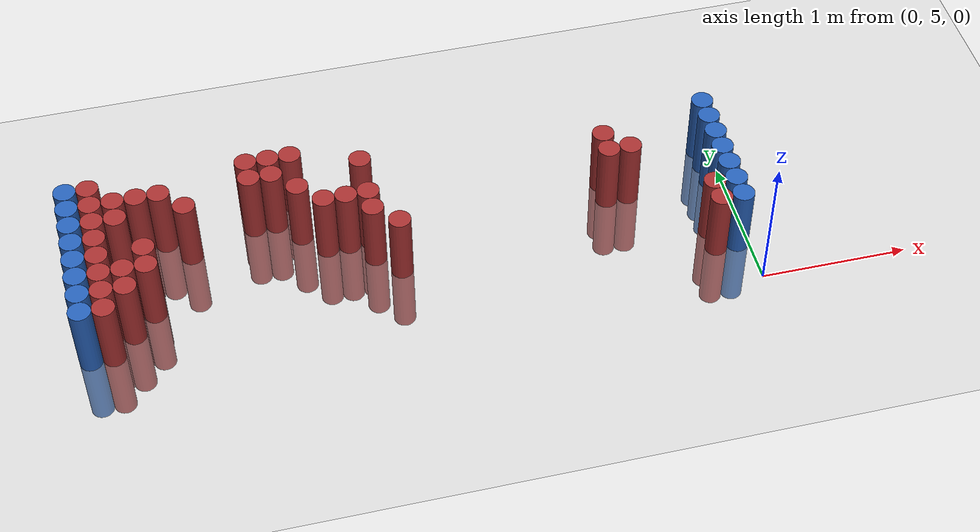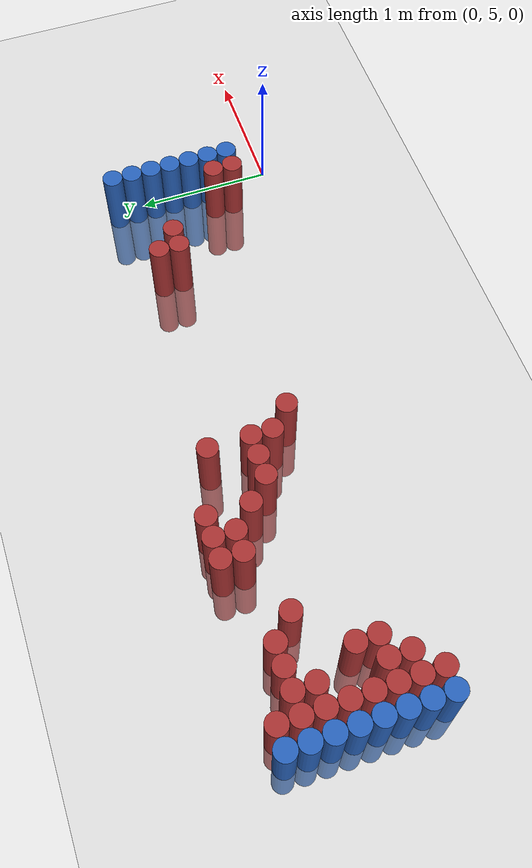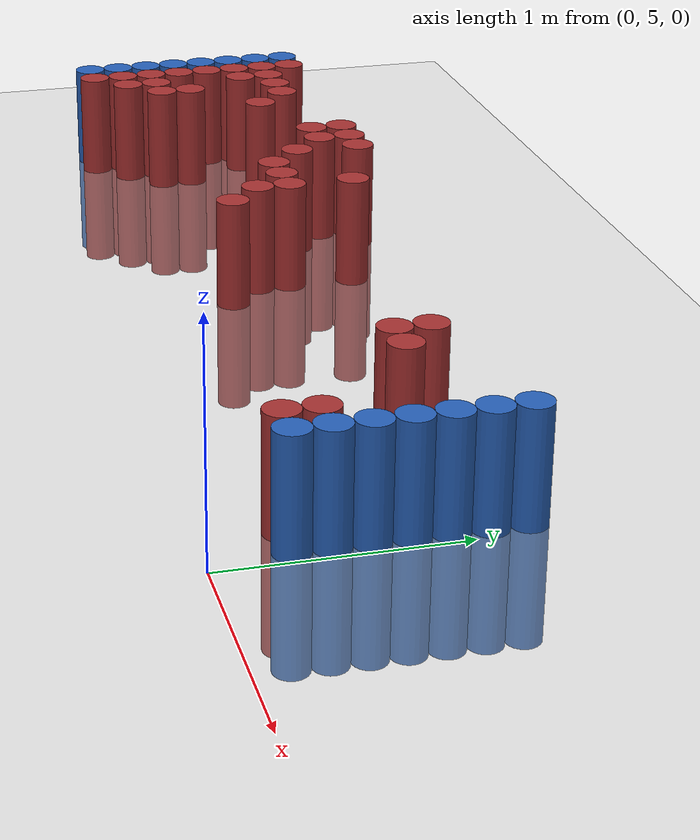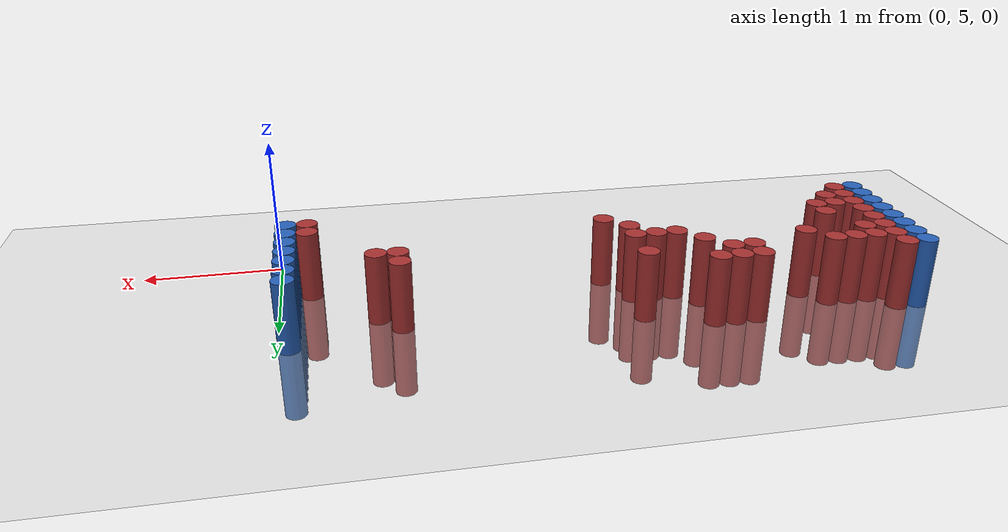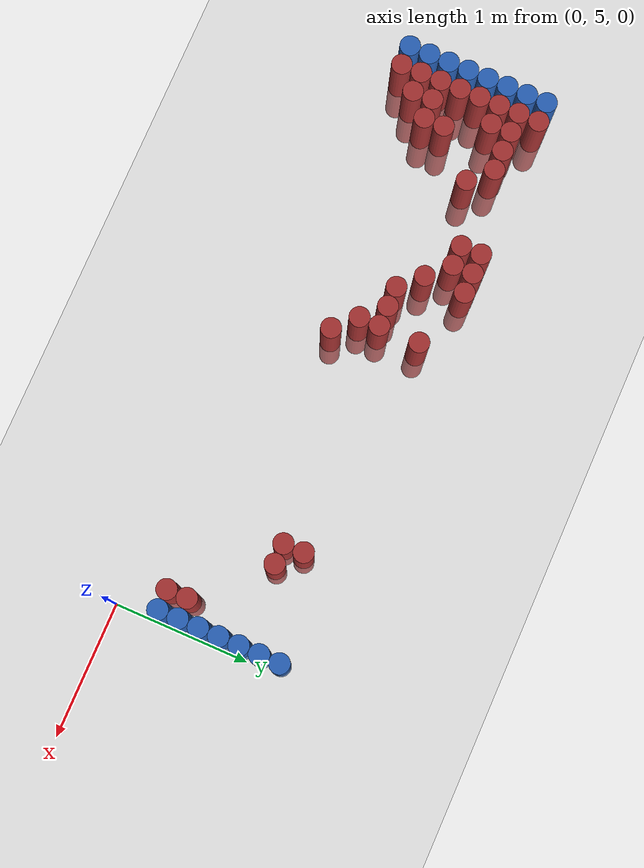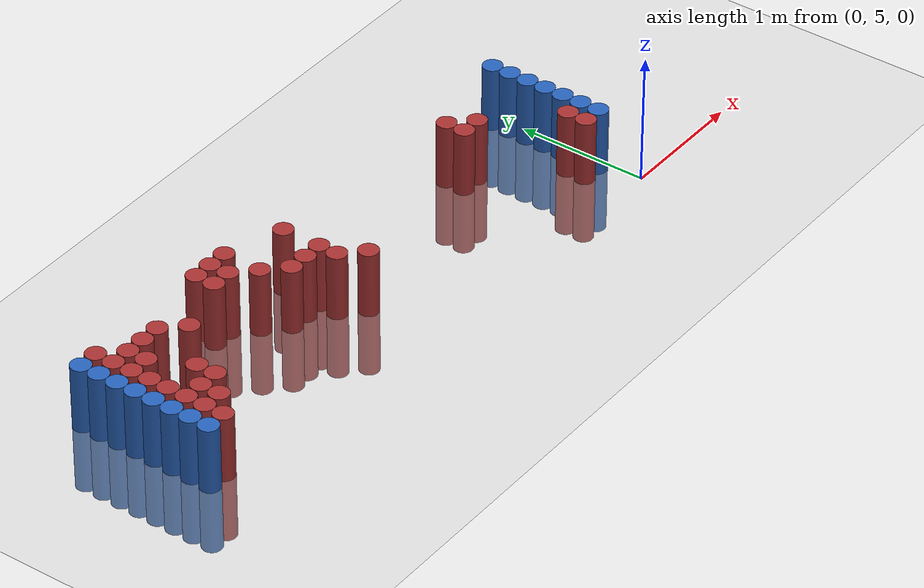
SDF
<sdf version="1.6">
 <world name="default">
  <model name="ground_plane">
   <static>1</static>
   <link name="link">
    <collision name="collision">
     <geometry><plane><normal>0 0 1</normal><size>100 100</size></plane></geometry>
     <surface><friction><ode><mu>100</mu><mu2>50</mu2></ode></friction></surface>
    </collision>
    <visual name="visual">
     <cast_shadows>0</cast_shadows>
     <geometry><plane><normal>0 0 1</normal><size>100 100</size></plane></geometry>
     <material>
      <script><uri>file://media/materials/scripts/gazebo.material</uri><name>Gazebo/Grey</name></script>
     </material>
    </visual>
   </link>
  </model>
  <model name="unit_cylinder_97">
   <static>1</static>
   <pose>-4.425000 5.325000 0.000000 0.000000 0.000000 0.000000</pose>
   <link name="link">
    <inertial>
     <mass>1</mass>
     <inertia><ixx>0.145833</ixx><ixy>0</ixy><ixz>0</ixz><iyy>0.145833</iyy><iyz>0</iyz><izz>0.125</izz></inertia>
    </inertial>
    <collision name="collision">
     <geometry><cylinder><radius>0.075000</radius><length>1</length></cylinder></geometry>
    </collision>
    <visual name="visual">
     <geometry><cylinder><radius>0.075000</radius><length>1</length></cylinder></geometry>
     <material>
      <ambient>0.152000 0.379000 0.720000 1</ambient>
      <diffuse>0.152000 0.379000 0.720000 1</diffuse>
     </material>
     <material>
      <script><name>Gazebo/Grey</name><uri>file://media/materials/scripts/gazebo.material</uri></script>
     </material>
    </visual>
   </link>
  </model>
  <model name="unit_cylinder_98">
   <static>1</static>
   <pose>-4.425000 5.475000 0.000000 0.000000 0.000000 0.000000</pose>
   <link name="link">
    <inertial>
     <mass>1</mass>
     <inertia><ixx>0.145833</ixx><ixy>0</ixy><ixz>0</ixz><iyy>0.145833</iyy><iyz>0</iyz><izz>0.125</izz></inertia>
    </inertial>
    <collision name="collision">
     <geometry><cylinder><radius>0.075000</radius><length>1</length></cylinder></geometry>
    </collision>
    <visual name="visual">
     <geometry><cylinder><radius>0.075000</radius><length>1</length></cylinder></geometry>
     <material>
      <ambient>0.152000 0.379000 0.720000 1</ambient>
      <diffuse>0.152000 0.379000 0.720000 1</diffuse>
     </material>
     <material>
      <script><name>Gazebo/Grey</name><uri>file://media/materials/scripts/gazebo.material</uri></script>
     </material>
    </visual>
   </link>
  </model>
  <model name="unit_cylinder_99">
   <static>1</static>
   <pose>-4.425000 5.625000 0.000000 0.000000 0.000000 0.000000</pose>
   <link name="link">
    <inertial>
     <mass>1</mass>
     <inertia><ixx>0.145833</ixx><ixy>0</ixy><ixz>0</ixz><iyy>0.145833</iyy><iyz>0</iyz><izz>0.125</izz></inertia>
    </inertial>
    <collision name="collision">
     <geometry><cylinder><radius>0.075000</radius><length>1</length></cylinder></geometry>
    </collision>
    <visual name="visual">
     <geometry><cylinder><radius>0.075000</radius><length>1</length></cylinder></geometry>
     <material>
      <ambient>0.152000 0.379000 0.720000 1</ambient>
      <diffuse>0.152000 0.379000 0.720000 1</diffuse>
     </material>
     <material>
      <script><name>Gazebo/Grey</name><uri>file://media/materials/scripts/gazebo.material</uri></script>
     </material>
    </visual>
   </link>
  </model>
  <model name="unit_cylinder_100">
   <static>1</static>
   <pose>-4.425000 5.775000 0.000000 0.000000 0.000000 0.000000</pose>
   <link name="link">
    <inertial>
     <mass>1</mass>
     <inertia><ixx>0.145833</ixx><ixy>0</ixy><ixz>0</ixz><iyy>0.145833</iyy><iyz>0</iyz><izz>0.125</izz></inertia>
    </inertial>
    <collision name="collision">
     <geometry><cylinder><radius>0.075000</radius><length>1</length></cylinder></geometry>
    </collision>
    <visual name="visual">
     <geometry><cylinder><radius>0.075000</radius><length>1</length></cylinder></geometry>
     <material>
      <ambient>0.152000 0.379000 0.720000 1</ambient>
      <diffuse>0.152000 0.379000 0.720000 1</diffuse>
     </material>
     <material>
      <script><name>Gazebo/Grey</name><uri>file://media/materials/scripts/gazebo.material</uri></script>
     </material>
    </visual>
   </link>
  </model>
  <model name="unit_cylinder_101">
   <static>1</static>
   <pose>-4.425000 5.925000 0.000000 0.000000 0.000000 0.000000</pose>
   <link name="link">
    <inertial>
     <mass>1</mass>
     <inertia><ixx>0.145833</ixx><ixy>0</ixy><ixz>0</ixz><iyy>0.145833</iyy><iyz>0</iyz><izz>0.125</izz></inertia>
    </inertial>
    <collision name="collision">
     <geometry><cylinder><radius>0.075000</radius><length>1</length></cylinder></geometry>
    </collision>
    <visual name="visual">
     <geometry><cylinder><radius>0.075000</radius><length>1</length></cylinder></geometry>
     <material>
      <ambient>0.152000 0.379000 0.720000 1</ambient>
      <diffuse>0.152000 0.379000 0.720000 1</diffuse>
     </material>
     <material>
      <script><name>Gazebo/Grey</name><uri>file://media/materials/scripts/gazebo.material</uri></script>
     </material>
    </visual>
   </link>
  </model>
  <model name="unit_cylinder_102">
   <static>1</static>
   <pose>-4.425000 6.075000 0.000000 0.000000 0.000000 0.000000</pose>
   <link name="link">
    <inertial>
     <mass>1</mass>
     <inertia><ixx>0.145833</ixx><ixy>0</ixy><ixz>0</ixz><iyy>0.145833</iyy><iyz>0</iyz><izz>0.125</izz></inertia>
    </inertial>
    <collision name="collision">
     <geometry><cylinder><radius>0.075000</radius><length>1</length></cylinder></geometry>
    </collision>
    <visual name="visual">
     <geometry><cylinder><radius>0.075000</radius><length>1</length></cylinder></geometry>
     <material>
      <ambient>0.152000 0.379000 0.720000 1</ambient>
      <diffuse>0.152000 0.379000 0.720000 1</diffuse>
     </material>
     <material>
      <script><name>Gazebo/Grey</name><uri>file://media/materials/scripts/gazebo.material</uri></script>
     </material>
    </visual>
   </link>
  </model>
  <model name="unit_cylinder_103">
   <static>1</static>
   <pose>-4.425000 6.225000 0.000000 0.000000 0.000000 0.000000</pose>
   <link name="link">
    <inertial>
     <mass>1</mass>
     <inertia><ixx>0.145833</ixx><ixy>0</ixy><ixz>0</ixz><iyy>0.145833</iyy><iyz>0</iyz><izz>0.125</izz></inertia>
    </inertial>
    <collision name="collision">
     <geometry><cylinder><radius>0.075000</radius><length>1</length></cylinder></geometry>
    </collision>
    <visual name="visual">
     <geometry><cylinder><radius>0.075000</radius><length>1</length></cylinder></geometry>
     <material>
      <ambient>0.152000 0.379000 0.720000 1</ambient>
      <diffuse>0.152000 0.379000 0.720000 1</diffuse>
     </material>
     <material>
      <script><name>Gazebo/Grey</name><uri>file://media/materials/scripts/gazebo.material</uri></script>
     </material>
    </visual>
   </link>
  </model>
  <model name="unit_cylinder_104">
   <static>1</static>
   <pose>-4.425000 6.375000 0.000000 0.000000 0.000000 0.000000</pose>
   <link name="link">
    <inertial>
     <mass>1</mass>
     <inertia><ixx>0.145833</ixx><ixy>0</ixy><ixz>0</ixz><iyy>0.145833</iyy><iyz>0</iyz><izz>0.125</izz></inertia>
    </inertial>
    <collision name="collision">
     <geometry><cylinder><radius>0.075000</radius><length>1</length></cylinder></geometry>
    </collision>
    <visual name="visual">
     <geometry><cylinder><radius>0.075000</radius><length>1</length></cylinder></geometry>
     <material>
      <ambient>0.152000 0.379000 0.720000 1</ambient>
      <diffuse>0.152000 0.379000 0.720000 1</diffuse>
     </material>
     <material>
      <script><name>Gazebo/Grey</name><uri>file://media/materials/scripts/gazebo.material</uri></script>
     </material>
    </visual>
   </link>
  </model>
  <model name="unit_cylinder_126">
   <static>1</static>
   <pose>-4.275000 5.325000 0.000000 0.000000 0.000000 0.000000</pose>
   <link name="link">
    <inertial>
     <mass>1</mass>
     <inertia><ixx>0.145833</ixx><ixy>0</ixy><ixz>0</ixz><iyy>0.145833</iyy><iyz>0</iyz><izz>0.125</izz></inertia>
    </inertial>
    <collision name="collision">
     <geometry><cylinder><radius>0.075000</radius><length>1</length></cylinder></geometry>
    </collision>
    <visual name="visual">
     <geometry><cylinder><radius>0.075000</radius><length>1</length></cylinder></geometry>
     <material>
      <ambient>0.648000 0.192000 0.192000 1</ambient>
      <diffuse>0.648000 0.192000 0.192000 1</diffuse>
     </material>
     <material>
      <script><name>Gazebo/Grey</name><uri>file://media/materials/scripts/gazebo.material</uri></script>
     </material>
    </visual>
   </link>
  </model>
  <model name="unit_cylinder_127">
   <static>1</static>
   <pose>-4.275000 5.475000 0.000000 0.000000 0.000000 0.000000</pose>
   <link name="link">
    <inertial>
     <mass>1</mass>
     <inertia><ixx>0.145833</ixx><ixy>0</ixy><ixz>0</ixz><iyy>0.145833</iyy><iyz>0</iyz><izz>0.125</izz></inertia>
    </inertial>
    <collision name="collision">
     <geometry><cylinder><radius>0.075000</radius><length>1</length></cylinder></geometry>
    </collision>
    <visual name="visual">
     <geometry><cylinder><radius>0.075000</radius><length>1</length></cylinder></geometry>
     <material>
      <ambient>0.648000 0.192000 0.192000 1</ambient>
      <diffuse>0.648000 0.192000 0.192000 1</diffuse>
     </material>
     <material>
      <script><name>Gazebo/Grey</name><uri>file://media/materials/scripts/gazebo.material</uri></script>
     </material>
    </visual>
   </link>
  </model>
  <model name="unit_cylinder_128">
   <static>1</static>
   <pose>-4.275000 5.625000 0.000000 0.000000 0.000000 0.000000</pose>
   <link name="link">
    <inertial>
     <mass>1</mass>
     <inertia><ixx>0.145833</ixx><ixy>0</ixy><ixz>0</ixz><iyy>0.145833</iyy><iyz>0</iyz><izz>0.125</izz></inertia>
    </inertial>
    <collision name="collision">
     <geometry><cylinder><radius>0.075000</radius><length>1</length></cylinder></geometry>
    </collision>
    <visual name="visual">
     <geometry><cylinder><radius>0.075000</radius><length>1</length></cylinder></geometry>
     <material>
      <ambient>0.648000 0.192000 0.192000 1</ambient>
      <diffuse>0.648000 0.192000 0.192000 1</diffuse>
     </material>
     <material>
      <script><name>Gazebo/Grey</name><uri>file://media/materials/scripts/gazebo.material</uri></script>
     </material>
    </visual>
   </link>
  </model>
  <model name="unit_cylinder_129">
   <static>1</static>
   <pose>-4.275000 5.775000 0.000000 0.000000 0.000000 0.000000</pose>
   <link name="link">
    <inertial>
     <mass>1</mass>
     <inertia><ixx>0.145833</ixx><ixy>0</ixy><ixz>0</ixz><iyy>0.145833</iyy><iyz>0</iyz><izz>0.125</izz></inertia>
    </inertial>
    <collision name="collision">
     <geometry><cylinder><radius>0.075000</radius><length>1</length></cylinder></geometry>
    </collision>
    <visual name="visual">
     <geometry><cylinder><radius>0.075000</radius><length>1</length></cylinder></geometry>
     <material>
      <ambient>0.648000 0.192000 0.192000 1</ambient>
      <diffuse>0.648000 0.192000 0.192000 1</diffuse>
     </material>
     <material>
      <script><name>Gazebo/Grey</name><uri>file://media/materials/scripts/gazebo.material</uri></script>
     </material>
    </visual>
   </link>
  </model>
  <model name="unit_cylinder_130">
   <static>1</static>
   <pose>-4.275000 5.925000 0.000000 0.000000 0.000000 0.000000</pose>
   <link name="link">
    <inertial>
     <mass>1</mass>
     <inertia><ixx>0.145833</ixx><ixy>0</ixy><ixz>0</ixz><iyy>0.145833</iyy><iyz>0</iyz><izz>0.125</izz></inertia>
    </inertial>
    <collision name="collision">
     <geometry><cylinder><radius>0.075000</radius><length>1</length></cylinder></geometry>
    </collision>
    <visual name="visual">
     <geometry><cylinder><radius>0.075000</radius><length>1</length></cylinder></geometry>
     <material>
      <ambient>0.648000 0.192000 0.192000 1</ambient>
      <diffuse>0.648000 0.192000 0.192000 1</diffuse>
     </material>
     <material>
      <script><name>Gazebo/Grey</name><uri>file://media/materials/scripts/gazebo.material</uri></script>
     </material>
    </visual>
   </link>
  </model>
  <model name="unit_cylinder_131">
   <static>1</static>
   <pose>-4.275000 6.075000 0.000000 0.000000 0.000000 0.000000</pose>
   <link name="link">
    <inertial>
     <mass>1</mass>
     <inertia><ixx>0.145833</ixx><ixy>0</ixy><ixz>0</ixz><iyy>0.145833</iyy><iyz>0</iyz><izz>0.125</izz></inertia>
    </inertial>
    <collision name="collision">
     <geometry><cylinder><radius>0.075000</radius><length>1</length></cylinder></geometry>
    </collision>
    <visual name="visual">
     <geometry><cylinder><radius>0.075000</radius><length>1</length></cylinder></geometry>
     <material>
      <ambient>0.648000 0.192000 0.192000 1</ambient>
      <diffuse>0.648000 0.192000 0.192000 1</diffuse>
     </material>
     <material>
      <script><name>Gazebo/Grey</name><uri>file://media/materials/scripts/gazebo.material</uri></script>
     </material>
    </visual>
   </link>
  </model>
  <model name="unit_cylinder_132">
   <static>1</static>
   <pose>-4.275000 6.225000 0.000000 0.000000 0.000000 0.000000</pose>
   <link name="link">
    <inertial>
     <mass>1</mass>
     <inertia><ixx>0.145833</ixx><ixy>0</ixy><ixz>0</ixz><iyy>0.145833</iyy><iyz>0</iyz><izz>0.125</izz></inertia>
    </inertial>
    <collision name="collision">
     <geometry><cylinder><radius>0.075000</radius><length>1</length></cylinder></geometry>
    </collision>
    <visual name="visual">
     <geometry><cylinder><radius>0.075000</radius><length>1</length></cylinder></geometry>
     <material>
      <ambient>0.648000 0.192000 0.192000 1</ambient>
      <diffuse>0.648000 0.192000 0.192000 1</diffuse>
     </material>
     <material>
      <script><name>Gazebo/Grey</name><uri>file://media/materials/scripts/gazebo.material</uri></script>
     </material>
    </visual>
   </link>
  </model>
  <model name="unit_cylinder_133">
   <static>1</static>
   <pose>-4.275000 6.375000 0.000000 0.000000 0.000000 0.000000</pose>
   <link name="link">
    <inertial>
     <mass>1</mass>
     <inertia><ixx>0.145833</ixx><ixy>0</ixy><ixz>0</ixz><iyy>0.145833</iyy><iyz>0</iyz><izz>0.125</izz></inertia>
    </inertial>
    <collision name="collision">
     <geometry><cylinder><radius>0.075000</radius><length>1</length></cylinder></geometry>
    </collision>
    <visual name="visual">
     <geometry><cylinder><radius>0.075000</radius><length>1</length></cylinder></geometry>
     <material>
      <ambient>0.648000 0.192000 0.192000 1</ambient>
      <diffuse>0.648000 0.192000 0.192000 1</diffuse>
     </material>
     <material>
      <script><name>Gazebo/Grey</name><uri>file://media/materials/scripts/gazebo.material</uri></script>
     </material>
    </visual>
   </link>
  </model>
  <model name="unit_cylinder_144">
   <static>1</static>
   <pose>-4.125000 5.475000 0.000000 0.000000 0.000000 0.000000</pose>
   <link name="link">
    <inertial>
     <mass>1</mass>
     <inertia><ixx>0.145833</ixx><ixy>0</ixy><ixz>0</ixz><iyy>0.145833</iyy><iyz>0</iyz><izz>0.125</izz></inertia>
    </inertial>
    <collision name="collision">
     <geometry><cylinder><radius>0.075000</radius><length>1</length></cylinder></geometry>
    </collision>
    <visual name="visual">
     <geometry><cylinder><radius>0.075000</radius><length>1</length></cylinder></geometry>
     <material>
      <ambient>0.648000 0.192000 0.192000 1</ambient>
      <diffuse>0.648000 0.192000 0.192000 1</diffuse>
     </material>
     <material>
      <script><name>Gazebo/Grey</name><uri>file://media/materials/scripts/gazebo.material</uri></script>
     </material>
    </visual>
   </link>
  </model>
  <model name="unit_cylinder_145">
   <static>1</static>
   <pose>-4.125000 5.625000 0.000000 0.000000 0.000000 0.000000</pose>
   <link name="link">
    <inertial>
     <mass>1</mass>
     <inertia><ixx>0.145833</ixx><ixy>0</ixy><ixz>0</ixz><iyy>0.145833</iyy><iyz>0</iyz><izz>0.125</izz></inertia>
    </inertial>
    <collision name="collision">
     <geometry><cylinder><radius>0.075000</radius><length>1</length></cylinder></geometry>
    </collision>
    <visual name="visual">
     <geometry><cylinder><radius>0.075000</radius><length>1</length></cylinder></geometry>
     <material>
      <ambient>0.648000 0.192000 0.192000 1</ambient>
      <diffuse>0.648000 0.192000 0.192000 1</diffuse>
     </material>
     <material>
      <script><name>Gazebo/Grey</name><uri>file://media/materials/scripts/gazebo.material</uri></script>
     </material>
    </visual>
   </link>
  </model>
  <model name="unit_cylinder_146">
   <static>1</static>
   <pose>-4.125000 6.075000 0.000000 0.000000 0.000000 0.000000</pose>
   <link name="link">
    <inertial>
     <mass>1</mass>
     <inertia><ixx>0.145833</ixx><ixy>0</ixy><ixz>0</ixz><iyy>0.145833</iyy><iyz>0</iyz><izz>0.125</izz></inertia>
    </inertial>
    <collision name="collision">
     <geometry><cylinder><radius>0.075000</radius><length>1</length></cylinder></geometry>
    </collision>
    <visual name="visual">
     <geometry><cylinder><radius>0.075000</radius><length>1</length></cylinder></geometry>
     <material>
      <ambient>0.648000 0.192000 0.192000 1</ambient>
      <diffuse>0.648000 0.192000 0.192000 1</diffuse>
     </material>
     <material>
      <script><name>Gazebo/Grey</name><uri>file://media/materials/scripts/gazebo.material</uri></script>
     </material>
    </visual>
   </link>
  </model>
  <model name="unit_cylinder_147">
   <static>1</static>
   <pose>-4.125000 6.225000 0.000000 0.000000 0.000000 0.000000</pose>
   <link name="link">
    <inertial>
     <mass>1</mass>
     <inertia><ixx>0.145833</ixx><ixy>0</ixy><ixz>0</ixz><iyy>0.145833</iyy><iyz>0</iyz><izz>0.125</izz></inertia>
    </inertial>
    <collision name="collision">
     <geometry><cylinder><radius>0.075000</radius><length>1</length></cylinder></geometry>
    </collision>
    <visual name="visual">
     <geometry><cylinder><radius>0.075000</radius><length>1</length></cylinder></geometry>
     <material>
      <ambient>0.648000 0.192000 0.192000 1</ambient>
      <diffuse>0.648000 0.192000 0.192000 1</diffuse>
     </material>
     <material>
      <script><name>Gazebo/Grey</name><uri>file://media/materials/scripts/gazebo.material</uri></script>
     </material>
    </visual>
   </link>
  </model>
  <model name="unit_cylinder_151">
   <static>1</static>
   <pose>-3.975000 5.625000 0.000000 0.000000 0.000000 0.000000</pose>
   <link name="link">
    <inertial>
     <mass>1</mass>
     <inertia><ixx>0.145833</ixx><ixy>0</ixy><ixz>0</ixz><iyy>0.145833</iyy><iyz>0</iyz><izz>0.125</izz></inertia>
    </inertial>
    <collision name="collision">
     <geometry><cylinder><radius>0.075000</radius><length>1</length></cylinder></geometry>
    </collision>
    <visual name="visual">
     <geometry><cylinder><radius>0.075000</radius><length>1</length></cylinder></geometry>
     <material>
      <ambient>0.648000 0.192000 0.192000 1</ambient>
      <diffuse>0.648000 0.192000 0.192000 1</diffuse>
     </material>
     <material>
      <script><name>Gazebo/Grey</name><uri>file://media/materials/scripts/gazebo.material</uri></script>
     </material>
    </visual>
   </link>
  </model>
  <model name="unit_cylinder_152">
   <static>1</static>
   <pose>-3.975000 5.775000 0.000000 0.000000 0.000000 0.000000</pose>
   <link name="link">
    <inertial>
     <mass>1</mass>
     <inertia><ixx>0.145833</ixx><ixy>0</ixy><ixz>0</ixz><iyy>0.145833</iyy><iyz>0</iyz><izz>0.125</izz></inertia>
    </inertial>
    <collision name="collision">
     <geometry><cylinder><radius>0.075000</radius><length>1</length></cylinder></geometry>
    </collision>
    <visual name="visual">
     <geometry><cylinder><radius>0.075000</radius><length>1</length></cylinder></geometry>
     <material>
      <ambient>0.648000 0.192000 0.192000 1</ambient>
      <diffuse>0.648000 0.192000 0.192000 1</diffuse>
     </material>
     <material>
      <script><name>Gazebo/Grey</name><uri>file://media/materials/scripts/gazebo.material</uri></script>
     </material>
    </visual>
   </link>
  </model>
  <model name="unit_cylinder_153">
   <static>1</static>
   <pose>-3.975000 6.225000 0.000000 0.000000 0.000000 0.000000</pose>
   <link name="link">
    <inertial>
     <mass>1</mass>
     <inertia><ixx>0.145833</ixx><ixy>0</ixy><ixz>0</ixz><iyy>0.145833</iyy><iyz>0</iyz><izz>0.125</izz></inertia>
    </inertial>
    <collision name="collision">
     <geometry><cylinder><radius>0.075000</radius><length>1</length></cylinder></geometry>
    </collision>
    <visual name="visual">
     <geometry><cylinder><radius>0.075000</radius><length>1</length></cylinder></geometry>
     <material>
      <ambient>0.648000 0.192000 0.192000 1</ambient>
      <diffuse>0.648000 0.192000 0.192000 1</diffuse>
     </material>
     <material>
      <script><name>Gazebo/Grey</name><uri>file://media/materials/scripts/gazebo.material</uri></script>
     </material>
    </visual>
   </link>
  </model>
  <model name="unit_cylinder_156">
   <static>1</static>
   <pose>-3.825000 6.225000 0.000000 0.000000 0.000000 0.000000</pose>
   <link name="link">
    <inertial>
     <mass>1</mass>
     <inertia><ixx>0.145833</ixx><ixy>0</ixy><ixz>0</ixz><iyy>0.145833</iyy><iyz>0</iyz><izz>0.125</izz></inertia>
    </inertial>
    <collision name="collision">
     <geometry><cylinder><radius>0.075000</radius><length>1</length></cylinder></geometry>
    </collision>
    <visual name="visual">
     <geometry><cylinder><radius>0.075000</radius><length>1</length></cylinder></geometry>
     <material>
      <ambient>0.648000 0.192000 0.192000 1</ambient>
      <diffuse>0.648000 0.192000 0.192000 1</diffuse>
     </material>
     <material>
      <script><name>Gazebo/Grey</name><uri>file://media/materials/scripts/gazebo.material</uri></script>
     </material>
    </visual>
   </link>
  </model>
  <model name="unit_cylinder_164">
   <static>1</static>
   <pose>-3.675000 6.075000 0.000000 0.000000 0.000000 0.000000</pose>
   <link name="link">
    <inertial>
     <mass>1</mass>
     <inertia><ixx>0.145833</ixx><ixy>0</ixy><ixz>0</ixz><iyy>0.145833</iyy><iyz>0</iyz><izz>0.125</izz></inertia>
    </inertial>
    <collision name="collision">
     <geometry><cylinder><radius>0.075000</radius><length>1</length></cylinder></geometry>
    </collision>
    <visual name="visual">
     <geometry><cylinder><radius>0.075000</radius><length>1</length></cylinder></geometry>
     <material>
      <ambient>0.648000 0.192000 0.192000 1</ambient>
      <diffuse>0.648000 0.192000 0.192000 1</diffuse>
     </material>
     <material>
      <script><name>Gazebo/Grey</name><uri>file://media/materials/scripts/gazebo.material</uri></script>
     </material>
    </visual>
   </link>
  </model>
  <model name="unit_cylinder_187">
   <static>1</static>
   <pose>-3.225000 6.225000 0.000000 0.000000 0.000000 0.000000</pose>
   <link name="link">
    <inertial>
     <mass>1</mass>
     <inertia><ixx>0.145833</ixx><ixy>0</ixy><ixz>0</ixz><iyy>0.145833</iyy><iyz>0</iyz><izz>0.125</izz></inertia>
    </inertial>
    <collision name="collision">
     <geometry><cylinder><radius>0.075000</radius><length>1</length></cylinder></geometry>
    </collision>
    <visual name="visual">
     <geometry><cylinder><radius>0.075000</radius><length>1</length></cylinder></geometry>
     <material>
      <ambient>0.648000 0.192000 0.192000 1</ambient>
      <diffuse>0.648000 0.192000 0.192000 1</diffuse>
     </material>
     <material>
      <script><name>Gazebo/Grey</name><uri>file://media/materials/scripts/gazebo.material</uri></script>
     </material>
    </visual>
   </link>
  </model>
  <model name="unit_cylinder_188">
   <static>1</static>
   <pose>-3.225000 6.375000 0.000000 0.000000 0.000000 0.000000</pose>
   <link name="link">
    <inertial>
     <mass>1</mass>
     <inertia><ixx>0.145833</ixx><ixy>0</ixy><ixz>0</ixz><iyy>0.145833</iyy><iyz>0</iyz><izz>0.125</izz></inertia>
    </inertial>
    <collision name="collision">
     <geometry><cylinder><radius>0.075000</radius><length>1</length></cylinder></geometry>
    </collision>
    <visual name="visual">
     <geometry><cylinder><radius>0.075000</radius><length>1</length></cylinder></geometry>
     <material>
      <ambient>0.648000 0.192000 0.192000 1</ambient>
      <diffuse>0.648000 0.192000 0.192000 1</diffuse>
     </material>
     <material>
      <script><name>Gazebo/Grey</name><uri>file://media/materials/scripts/gazebo.material</uri></script>
     </material>
    </visual>
   </link>
  </model>
  <model name="unit_cylinder_194">
   <static>1</static>
   <pose>-3.075000 6.225000 0.000000 0.000000 0.000000 0.000000</pose>
   <link name="link">
    <inertial>
     <mass>1</mass>
     <inertia><ixx>0.145833</ixx><ixy>0</ixy><ixz>0</ixz><iyy>0.145833</iyy><iyz>0</iyz><izz>0.125</izz></inertia>
    </inertial>
    <collision name="collision">
     <geometry><cylinder><radius>0.075000</radius><length>1</length></cylinder></geometry>
    </collision>
    <visual name="visual">
     <geometry><cylinder><radius>0.075000</radius><length>1</length></cylinder></geometry>
     <material>
      <ambient>0.648000 0.192000 0.192000 1</ambient>
      <diffuse>0.648000 0.192000 0.192000 1</diffuse>
     </material>
     <material>
      <script><name>Gazebo/Grey</name><uri>file://media/materials/scripts/gazebo.material</uri></script>
     </material>
    </visual>
   </link>
  </model>
  <model name="unit_cylinder_195">
   <static>1</static>
   <pose>-3.075000 6.375000 0.000000 0.000000 0.000000 0.000000</pose>
   <link name="link">
    <inertial>
     <mass>1</mass>
     <inertia><ixx>0.145833</ixx><ixy>0</ixy><ixz>0</ixz><iyy>0.145833</iyy><iyz>0</iyz><izz>0.125</izz></inertia>
    </inertial>
    <collision name="collision">
     <geometry><cylinder><radius>0.075000</radius><length>1</length></cylinder></geometry>
    </collision>
    <visual name="visual">
     <geometry><cylinder><radius>0.075000</radius><length>1</length></cylinder></geometry>
     <material>
      <ambient>0.648000 0.192000 0.192000 1</ambient>
      <diffuse>0.648000 0.192000 0.192000 1</diffuse>
     </material>
     <material>
      <script><name>Gazebo/Grey</name><uri>file://media/materials/scripts/gazebo.material</uri></script>
     </material>
    </visual>
   </link>
  </model>
  <model name="unit_cylinder_199">
   <static>1</static>
   <pose>-2.925000 6.075000 0.000000 0.000000 0.000000 0.000000</pose>
   <link name="link">
    <inertial>
     <mass>1</mass>
     <inertia><ixx>0.145833</ixx><ixy>0</ixy><ixz>0</ixz><iyy>0.145833</iyy><iyz>0</iyz><izz>0.125</izz></inertia>
    </inertial>
    <collision name="collision">
     <geometry><cylinder><radius>0.075000</radius><length>1</length></cylinder></geometry>
    </collision>
    <visual name="visual">
     <geometry><cylinder><radius>0.075000</radius><length>1</length></cylinder></geometry>
     <material>
      <ambient>0.648000 0.192000 0.192000 1</ambient>
      <diffuse>0.648000 0.192000 0.192000 1</diffuse>
     </material>
     <material>
      <script><name>Gazebo/Grey</name><uri>file://media/materials/scripts/gazebo.material</uri></script>
     </material>
    </visual>
   </link>
  </model>
  <model name="unit_cylinder_200">
   <static>1</static>
   <pose>-2.925000 6.375000 0.000000 0.000000 0.000000 0.000000</pose>
   <link name="link">
    <inertial>
     <mass>1</mass>
     <inertia><ixx>0.145833</ixx><ixy>0</ixy><ixz>0</ixz><iyy>0.145833</iyy><iyz>0</iyz><izz>0.125</izz></inertia>
    </inertial>
    <collision name="collision">
     <geometry><cylinder><radius>0.075000</radius><length>1</length></cylinder></geometry>
    </collision>
    <visual name="visual">
     <geometry><cylinder><radius>0.075000</radius><length>1</length></cylinder></geometry>
     <material>
      <ambient>0.648000 0.192000 0.192000 1</ambient>
      <diffuse>0.648000 0.192000 0.192000 1</diffuse>
     </material>
     <material>
      <script><name>Gazebo/Grey</name><uri>file://media/materials/scripts/gazebo.material</uri></script>
     </material>
    </visual>
   </link>
  </model>
  <model name="unit_cylinder_205">
   <static>1</static>
   <pose>-2.775000 5.925000 0.000000 0.000000 0.000000 0.000000</pose>
   <link name="link">
    <inertial>
     <mass>1</mass>
     <inertia><ixx>0.145833</ixx><ixy>0</ixy><ixz>0</ixz><iyy>0.145833</iyy><iyz>0</iyz><izz>0.125</izz></inertia>
    </inertial>
    <collision name="collision">
     <geometry><cylinder><radius>0.075000</radius><length>1</length></cylinder></geometry>
    </collision>
    <visual name="visual">
     <geometry><cylinder><radius>0.075000</radius><length>1</length></cylinder></geometry>
     <material>
      <ambient>0.648000 0.192000 0.192000 1</ambient>
      <diffuse>0.648000 0.192000 0.192000 1</diffuse>
     </material>
     <material>
      <script><name>Gazebo/Grey</name><uri>file://media/materials/scripts/gazebo.material</uri></script>
     </material>
    </visual>
   </link>
  </model>
  <model name="unit_cylinder_209">
   <static>1</static>
   <pose>-2.625000 5.925000 0.000000 0.000000 0.000000 0.000000</pose>
   <link name="link">
    <inertial>
     <mass>1</mass>
     <inertia><ixx>0.145833</ixx><ixy>0</ixy><ixz>0</ixz><iyy>0.145833</iyy><iyz>0</iyz><izz>0.125</izz></inertia>
    </inertial>
    <collision name="collision">
     <geometry><cylinder><radius>0.075000</radius><length>1</length></cylinder></geometry>
    </collision>
    <visual name="visual">
     <geometry><cylinder><radius>0.075000</radius><length>1</length></cylinder></geometry>
     <material>
      <ambient>0.648000 0.192000 0.192000 1</ambient>
      <diffuse>0.648000 0.192000 0.192000 1</diffuse>
     </material>
     <material>
      <script><name>Gazebo/Grey</name><uri>file://media/materials/scripts/gazebo.material</uri></script>
     </material>
    </visual>
   </link>
  </model>
  <model name="unit_cylinder_211">
   <static>1</static>
   <pose>-2.475000 5.775000 0.000000 0.000000 0.000000 0.000000</pose>
   <link name="link">
    <inertial>
     <mass>1</mass>
     <inertia><ixx>0.145833</ixx><ixy>0</ixy><ixz>0</ixz><iyy>0.145833</iyy><iyz>0</iyz><izz>0.125</izz></inertia>
    </inertial>
    <collision name="collision">
     <geometry><cylinder><radius>0.075000</radius><length>1</length></cylinder></geometry>
    </collision>
    <visual name="visual">
     <geometry><cylinder><radius>0.075000</radius><length>1</length></cylinder></geometry>
     <material>
      <ambient>0.648000 0.192000 0.192000 1</ambient>
      <diffuse>0.648000 0.192000 0.192000 1</diffuse>
     </material>
     <material>
      <script><name>Gazebo/Grey</name><uri>file://media/materials/scripts/gazebo.material</uri></script>
     </material>
    </visual>
   </link>
  </model>
  <model name="unit_cylinder_212">
   <static>1</static>
   <pose>-2.475000 5.925000 0.000000 0.000000 0.000000 0.000000</pose>
   <link name="link">
    <inertial>
     <mass>1</mass>
     <inertia><ixx>0.145833</ixx><ixy>0</ixy><ixz>0</ixz><iyy>0.145833</iyy><iyz>0</iyz><izz>0.125</izz></inertia>
    </inertial>
    <collision name="collision">
     <geometry><cylinder><radius>0.075000</radius><length>1</length></cylinder></geometry>
    </collision>
    <visual name="visual">
     <geometry><cylinder><radius>0.075000</radius><length>1</length></cylinder></geometry>
     <material>
      <ambient>0.648000 0.192000 0.192000 1</ambient>
      <diffuse>0.648000 0.192000 0.192000 1</diffuse>
     </material>
     <material>
      <script><name>Gazebo/Grey</name><uri>file://media/materials/scripts/gazebo.material</uri></script>
     </material>
    </visual>
   </link>
  </model>
  <model name="unit_cylinder_213">
   <static>1</static>
   <pose>-2.475000 6.225000 0.000000 0.000000 0.000000 0.000000</pose>
   <link name="link">
    <inertial>
     <mass>1</mass>
     <inertia><ixx>0.145833</ixx><ixy>0</ixy><ixz>0</ixz><iyy>0.145833</iyy><iyz>0</iyz><izz>0.125</izz></inertia>
    </inertial>
    <collision name="collision">
     <geometry><cylinder><radius>0.075000</radius><length>1</length></cylinder></geometry>
    </collision>
    <visual name="visual">
     <geometry><cylinder><radius>0.075000</radius><length>1</length></cylinder></geometry>
     <material>
      <ambient>0.648000 0.192000 0.192000 1</ambient>
      <diffuse>0.648000 0.192000 0.192000 1</diffuse>
     </material>
     <material>
      <script><name>Gazebo/Grey</name><uri>file://media/materials/scripts/gazebo.material</uri></script>
     </material>
    </visual>
   </link>
  </model>
  <model name="unit_cylinder_215">
   <static>1</static>
   <pose>-2.325000 5.625000 0.000000 0.000000 0.000000 0.000000</pose>
   <link name="link">
    <inertial>
     <mass>1</mass>
     <inertia><ixx>0.145833</ixx><ixy>0</ixy><ixz>0</ixz><iyy>0.145833</iyy><iyz>0</iyz><izz>0.125</izz></inertia>
    </inertial>
    <collision name="collision">
     <geometry><cylinder><radius>0.075000</radius><length>1</length></cylinder></geometry>
    </collision>
    <visual name="visual">
     <geometry><cylinder><radius>0.075000</radius><length>1</length></cylinder></geometry>
     <material>
      <ambient>0.648000 0.192000 0.192000 1</ambient>
      <diffuse>0.648000 0.192000 0.192000 1</diffuse>
     </material>
     <material>
      <script><name>Gazebo/Grey</name><uri>file://media/materials/scripts/gazebo.material</uri></script>
     </material>
    </visual>
   </link>
  </model>
  <model name="unit_cylinder_233">
   <static>1</static>
   <pose>-0.825000 5.925000 0.000000 0.000000 0.000000 0.000000</pose>
   <link name="link">
    <inertial>
     <mass>1</mass>
     <inertia><ixx>0.145833</ixx><ixy>0</ixy><ixz>0</ixz><iyy>0.145833</iyy><iyz>0</iyz><izz>0.125</izz></inertia>
    </inertial>
    <collision name="collision">
     <geometry><cylinder><radius>0.075000</radius><length>1</length></cylinder></geometry>
    </collision>
    <visual name="visual">
     <geometry><cylinder><radius>0.075000</radius><length>1</length></cylinder></geometry>
     <material>
      <ambient>0.648000 0.192000 0.192000 1</ambient>
      <diffuse>0.648000 0.192000 0.192000 1</diffuse>
     </material>
     <material>
      <script><name>Gazebo/Grey</name><uri>file://media/materials/scripts/gazebo.material</uri></script>
     </material>
    </visual>
   </link>
  </model>
  <model name="unit_cylinder_234">
   <static>1</static>
   <pose>-0.825000 6.075000 0.000000 0.000000 0.000000 0.000000</pose>
   <link name="link">
    <inertial>
     <mass>1</mass>
     <inertia><ixx>0.145833</ixx><ixy>0</ixy><ixz>0</ixz><iyy>0.145833</iyy><iyz>0</iyz><izz>0.125</izz></inertia>
    </inertial>
    <collision name="collision">
     <geometry><cylinder><radius>0.075000</radius><length>1</length></cylinder></geometry>
    </collision>
    <visual name="visual">
     <geometry><cylinder><radius>0.075000</radius><length>1</length></cylinder></geometry>
     <material>
      <ambient>0.648000 0.192000 0.192000 1</ambient>
      <diffuse>0.648000 0.192000 0.192000 1</diffuse>
     </material>
     <material>
      <script><name>Gazebo/Grey</name><uri>file://media/materials/scripts/gazebo.material</uri></script>
     </material>
    </visual>
   </link>
  </model>
  <model name="unit_cylinder_236">
   <static>1</static>
   <pose>-0.675000 5.925000 0.000000 0.000000 0.000000 0.000000</pose>
   <link name="link">
    <inertial>
     <mass>1</mass>
     <inertia><ixx>0.145833</ixx><ixy>0</ixy><ixz>0</ixz><iyy>0.145833</iyy><iyz>0</iyz><izz>0.125</izz></inertia>
    </inertial>
    <collision name="collision">
     <geometry><cylinder><radius>0.075000</radius><length>1</length></cylinder></geometry>
    </collision>
    <visual name="visual">
     <geometry><cylinder><radius>0.075000</radius><length>1</length></cylinder></geometry>
     <material>
      <ambient>0.648000 0.192000 0.192000 1</ambient>
      <diffuse>0.648000 0.192000 0.192000 1</diffuse>
     </material>
     <material>
      <script><name>Gazebo/Grey</name><uri>file://media/materials/scripts/gazebo.material</uri></script>
     </material>
    </visual>
   </link>
  </model>
  <model name="unit_cylinder_252">
   <static>1</static>
   <pose>-0.225000 5.325000 0.000000 0.000000 0.000000 0.000000</pose>
   <link name="link">
    <inertial>
     <mass>1</mass>
     <inertia><ixx>0.145833</ixx><ixy>0</ixy><ixz>0</ixz><iyy>0.145833</iyy><iyz>0</iyz><izz>0.125</izz></inertia>
    </inertial>
    <collision name="collision">
     <geometry><cylinder><radius>0.075000</radius><length>1</length></cylinder></geometry>
    </collision>
    <visual name="visual">
     <geometry><cylinder><radius>0.075000</radius><length>1</length></cylinder></geometry>
     <material>
      <ambient>0.648000 0.192000 0.192000 1</ambient>
      <diffuse>0.648000 0.192000 0.192000 1</diffuse>
     </material>
     <material>
      <script><name>Gazebo/Grey</name><uri>file://media/materials/scripts/gazebo.material</uri></script>
     </material>
    </visual>
   </link>
  </model>
  <model name="unit_cylinder_253">
   <static>1</static>
   <pose>-0.225000 5.475000 0.000000 0.000000 0.000000 0.000000</pose>
   <link name="link">
    <inertial>
     <mass>1</mass>
     <inertia><ixx>0.145833</ixx><ixy>0</ixy><ixz>0</ixz><iyy>0.145833</iyy><iyz>0</iyz><izz>0.125</izz></inertia>
    </inertial>
    <collision name="collision">
     <geometry><cylinder><radius>0.075000</radius><length>1</length></cylinder></geometry>
    </collision>
    <visual name="visual">
     <geometry><cylinder><radius>0.075000</radius><length>1</length></cylinder></geometry>
     <material>
      <ambient>0.648000 0.192000 0.192000 1</ambient>
      <diffuse>0.648000 0.192000 0.192000 1</diffuse>
     </material>
     <material>
      <script><name>Gazebo/Grey</name><uri>file://media/materials/scripts/gazebo.material</uri></script>
     </material>
    </visual>
   </link>
  </model>
  <model name="unit_cylinder_264">
   <static>1</static>
   <pose>-0.075000 5.325000 0.000000 0.000000 0.000000 0.000000</pose>
   <link name="link">
    <inertial>
     <mass>1</mass>
     <inertia><ixx>0.145833</ixx><ixy>0</ixy><ixz>0</ixz><iyy>0.145833</iyy><iyz>0</iyz><izz>0.125</izz></inertia>
    </inertial>
    <collision name="collision">
     <geometry><cylinder><radius>0.075000</radius><length>1</length></cylinder></geometry>
    </collision>
    <visual name="visual">
     <geometry><cylinder><radius>0.075000</radius><length>1</length></cylinder></geometry>
     <material>
      <ambient>0.152000 0.379000 0.720000 1</ambient>
      <diffuse>0.152000 0.379000 0.720000 1</diffuse>
     </material>
     <material>
      <script><name>Gazebo/Grey</name><uri>file://media/materials/scripts/gazebo.material</uri></script>
     </material>
    </visual>
   </link>
  </model>
  <model name="unit_cylinder_265">
   <static>1</static>
   <pose>-0.075000 5.475000 0.000000 0.000000 0.000000 0.000000</pose>
   <link name="link">
    <inertial>
     <mass>1</mass>
     <inertia><ixx>0.145833</ixx><ixy>0</ixy><ixz>0</ixz><iyy>0.145833</iyy><iyz>0</iyz><izz>0.125</izz></inertia>
    </inertial>
    <collision name="collision">
     <geometry><cylinder><radius>0.075000</radius><length>1</length></cylinder></geometry>
    </collision>
    <visual name="visual">
     <geometry><cylinder><radius>0.075000</radius><length>1</length></cylinder></geometry>
     <material>
      <ambient>0.152000 0.379000 0.720000 1</ambient>
      <diffuse>0.152000 0.379000 0.720000 1</diffuse>
     </material>
     <material>
      <script><name>Gazebo/Grey</name><uri>file://media/materials/scripts/gazebo.material</uri></script>
     </material>
    </visual>
   </link>
  </model>
  <model name="unit_cylinder_266">
   <static>1</static>
   <pose>-0.075000 5.625000 0.000000 0.000000 0.000000 0.000000</pose>
   <link name="link">
    <inertial>
     <mass>1</mass>
     <inertia><ixx>0.145833</ixx><ixy>0</ixy><ixz>0</ixz><iyy>0.145833</iyy><iyz>0</iyz><izz>0.125</izz></inertia>
    </inertial>
    <collision name="collision">
     <geometry><cylinder><radius>0.075000</radius><length>1</length></cylinder></geometry>
    </collision>
    <visual name="visual">
     <geometry><cylinder><radius>0.075000</radius><length>1</length></cylinder></geometry>
     <material>
      <ambient>0.152000 0.379000 0.720000 1</ambient>
      <diffuse>0.152000 0.379000 0.720000 1</diffuse>
     </material>
     <material>
      <script><name>Gazebo/Grey</name><uri>file://media/materials/scripts/gazebo.material</uri></script>
     </material>
    </visual>
   </link>
  </model>
  <model name="unit_cylinder_267">
   <static>1</static>
   <pose>-0.075000 5.775000 0.000000 0.000000 0.000000 0.000000</pose>
   <link name="link">
    <inertial>
     <mass>1</mass>
     <inertia><ixx>0.145833</ixx><ixy>0</ixy><ixz>0</ixz><iyy>0.145833</iyy><iyz>0</iyz><izz>0.125</izz></inertia>
    </inertial>
    <collision name="collision">
     <geometry><cylinder><radius>0.075000</radius><length>1</length></cylinder></geometry>
    </collision>
    <visual name="visual">
     <geometry><cylinder><radius>0.075000</radius><length>1</length></cylinder></geometry>
     <material>
      <ambient>0.152000 0.379000 0.720000 1</ambient>
      <diffuse>0.152000 0.379000 0.720000 1</diffuse>
     </material>
     <material>
      <script><name>Gazebo/Grey</name><uri>file://media/materials/scripts/gazebo.material</uri></script>
     </material>
    </visual>
   </link>
  </model>
  <model name="unit_cylinder_268">
   <static>1</static>
   <pose>-0.075000 5.925000 0.000000 0.000000 0.000000 0.000000</pose>
   <link name="link">
    <inertial>
     <mass>1</mass>
     <inertia><ixx>0.145833</ixx><ixy>0</ixy><ixz>0</ixz><iyy>0.145833</iyy><iyz>0</iyz><izz>0.125</izz></inertia>
    </inertial>
    <collision name="collision">
     <geometry><cylinder><radius>0.075000</radius><length>1</length></cylinder></geometry>
    </collision>
    <visual name="visual">
     <geometry><cylinder><radius>0.075000</radius><length>1</length></cylinder></geometry>
     <material>
      <ambient>0.152000 0.379000 0.720000 1</ambient>
      <diffuse>0.152000 0.379000 0.720000 1</diffuse>
     </material>
     <material>
      <script><name>Gazebo/Grey</name><uri>file://media/materials/scripts/gazebo.material</uri></script>
     </material>
    </visual>
   </link>
  </model>
  <model name="unit_cylinder_269">
   <static>1</static>
   <pose>-0.075000 6.075000 0.000000 0.000000 0.000000 0.000000</pose>
   <link name="link">
    <inertial>
     <mass>1</mass>
     <inertia><ixx>0.145833</ixx><ixy>0</ixy><ixz>0</ixz><iyy>0.145833</iyy><iyz>0</iyz><izz>0.125</izz></inertia>
    </inertial>
    <collision name="collision">
     <geometry><cylinder><radius>0.075000</radius><length>1</length></cylinder></geometry>
    </collision>
    <visual name="visual">
     <geometry><cylinder><radius>0.075000</radius><length>1</length></cylinder></geometry>
     <material>
      <ambient>0.152000 0.379000 0.720000 1</ambient>
      <diffuse>0.152000 0.379000 0.720000 1</diffuse>
     </material>
     <material>
      <script><name>Gazebo/Grey</name><uri>file://media/materials/scripts/gazebo.material</uri></script>
     </material>
    </visual>
   </link>
  </model>
  <model name="unit_cylinder_270">
   <static>1</static>
   <pose>-0.075000 6.225000 0.000000 0.000000 0.000000 0.000000</pose>
   <link name="link">
    <inertial>
     <mass>1</mass>
     <inertia><ixx>0.145833</ixx><ixy>0</ixy><ixz>0</ixz><iyy>0.145833</iyy><iyz>0</iyz><izz>0.125</izz></inertia>
    </inertial>
    <collision name="collision">
     <geometry><cylinder><radius>0.075000</radius><length>1</length></cylinder></geometry>
    </collision>
    <visual name="visual">
     <geometry><cylinder><radius>0.075000</radius><length>1</length></cylinder></geometry>
     <material>
      <ambient>0.152000 0.379000 0.720000 1</ambient>
      <diffuse>0.152000 0.379000 0.720000 1</diffuse>
     </material>
     <material>
      <script><name>Gazebo/Grey</name><uri>file://media/materials/scripts/gazebo.material</uri></script>
     </material>
    </visual>
   </link>
  </model>
 </world>
</sdf>
